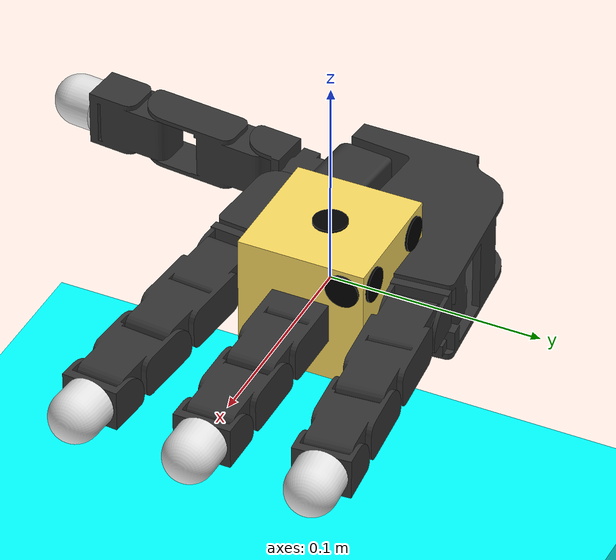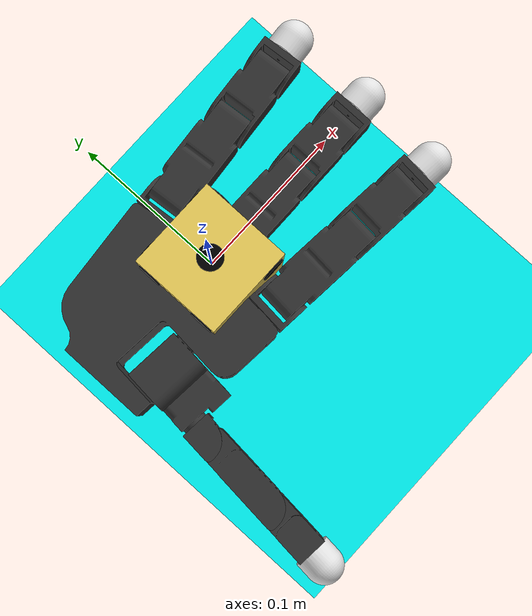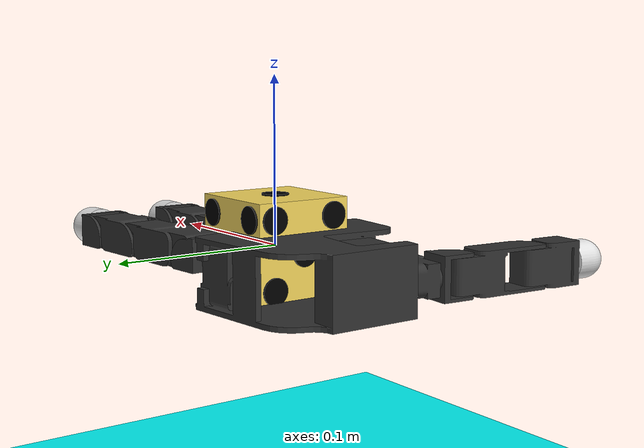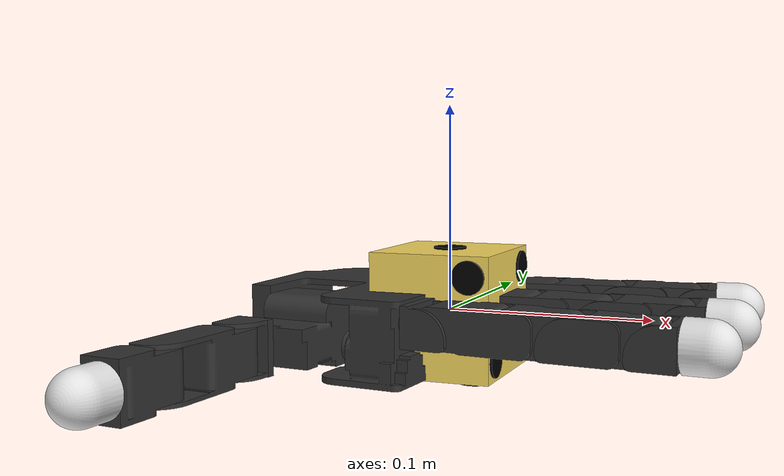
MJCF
<mujoco model="allegro_scene_drake">
<!-- Copyright (c) 2023 Robotics and AI Institute LLC dba RAI Institute. All rights reserved. -->

  <compiler angle="radian" meshdir="../meshes/allegro/visual"/>

  <default>
    <default class="allegro_right">
      <joint axis="0 1 0" damping=".1"/>

      <default class="visual">
        <geom type="mesh" material="black"/>
        <default class="palm_visual">
          <geom mesh="base_link"/>
        </default>
        <default class="base_visual">
          <geom mesh="link_0.0"/>
        </default>
        <default class="proximal_visual">
          <geom mesh="link_1.0"/>
        </default>
        <default class="medial_visual">
          <geom mesh="link_2.0"/>
        </default>
        <default class="distal_visual">
          <geom mesh="link_3.0"/>
        </default>
        <default class="fingertip_visual">
          <geom pos="0 0 0.0267" material="white" mesh="link_3.0_tip"/>
        </default>
        <default class="thumbtip_visual">
          <geom pos="0 0 0.0423" material="white" mesh="link_15.0_tip"/>
        </default>
      </default>

      <default class="collision">
        <geom type="box" material="transparent"/>
        <default class="palm_collision">
          <geom size="0.0204 0.0565 0.0475" pos="-0.0093 0 -0.0475"/>
        </default>
        <default class="base_collision">
          <geom size="0.0098 0.01375 0.0082" pos="0 0 0.0082"/>
          <default class="thumb_base_collision_0">
            <geom size="0.0179 0.017 0.011" pos="-0.0179 0.009 0.003"/>
          </default>
          <default class="thumb_base_collision_1">
            <geom size="0.0179 0.00980 0.012" pos="-0.0179 0.005 0.0255"/>
          </default>
          <!-- This geometry is commented out, while we wait for MJX to support cylinder collisions. -->
        </default>
        <default class="proximal_collision">
          <geom size="0.0098 0.01375 0.027" pos="0 0 0.027"/>
          <default class="thumb_proximal_collision">
            <geom size="0.0098 0.01375 0.00885" pos="0 0 0.00885"/>
          </default>
        </default>
        <default class="medial_collision">
          <geom size="0.0098 0.01375 0.0192" pos="0 0 0.0192"/>
          <default class="thumb_medial_collision">
            <geom size="0.0098 0.01375 0.0257" pos="0 0 0.0257"/>
          </default>
        </default>
        <default class="distal_collision">
          <geom size="0.0098 0.01375 0.008" pos="0 0 0.008"/>
          <default class="thumb_distal_collision">
            <geom size="0.0098 0.01375 0.0157" pos="0 0 0.0157"/>
          </default>
        </default>
        <default class="fingertip_collision">
          <geom type="capsule" size="0.012 0.008" pos="0 0 0.019"/>
          <default class="thumbtip_collision">
            <geom type="capsule" size="0.012 0.0075" pos="0 0 0.035"/>
          </default>
        </default>
      </default>

      <default class="palm">
        <joint damping="1.0" range="-0.3 0.3"/>
      </default>
      <default class="base">
        <joint axis="0 0 1" range="-0.47 0.47"/>
      </default>
      <default class="proximal">
        <joint range="-0.196 1.61"/>
      </default>
      <default class="medial">
        <joint range="-0.174 1.709"/>
      </default>
      <default class="distal">
        <joint range="-0.227 1.618"/>
      </default>
      <default class="thumb_base">
        <joint axis="-1 0 0" range="0.263 1.396"/>
      </default>
      <default class="thumb_proximal">
        <joint axis="0 0 1" range="-0.105 1.163"/>
      </default>
      <default class="thumb_medial">
        <joint range="-0.189 1.644"/>
      </default>
      <default class="thumb_distal">
        <joint range="-0.162 1.719"/>
      </default>
    </default>
  </default>

  <asset>
    <material name="black" rgba="0.2 0.2 0.2 1"/>
    <material name="white" rgba="0.9 0.9 0.9 1"/>
    <material name="transparent" rgba="0 0 0 0"/>

    <mesh file="base_link.obj"/>
    <mesh file="link_0.0.obj"/>
    <mesh file="link_1.0.obj"/>
    <mesh file="link_2.0.obj"/>
    <mesh file="link_3.0.obj"/>
    <mesh file="link_3.0_tip.obj"/>
    <mesh file="link_12.0_right.obj"/>
    <mesh file="link_13.0.obj"/>
    <mesh file="link_14.0.obj"/>
    <mesh file="link_15.0.obj"/>
    <mesh file="link_15.0_tip.obj"/>
  </asset>

  <worldbody>
    <body>
      <geom mass="0" name="floor" pos="0 0 -0.20" size="10.0 10.0 0.05" rgba="0 1 1 1" type="box"/>
    </body>

    <body name="object" pos="0 0 0">
      <freejoint/>
      <geom type="box" mass="0.15" pos="0 0 0" quat="1 0 0 0" size="0.030 0.030 0.030" rgba="0.97 0.85 0.37 1" class="collision"/>
      <geom type="cylinder" mass="0" pos="0 0 0.030" size="0.008 0.001" rgba="0 0 0 1" class="visual"/>

      <geom type="cylinder" mass="0" pos="0.02 -0.030 0.02" size="0.008 0.001" quat="1 1 0 0" rgba="0 0 0 1" class="visual"/>
      <geom type="cylinder" mass="0" pos="-0.02 -0.030 -0.02" size="0.008 0.001" quat="1 1 0 0" rgba="0 0 0 1" class="visual"/>

      <geom type="cylinder" mass="0" pos="0.030 0.02 0.02" size="0.008 0.001" quat="1 0 1 0" rgba="0 0 0 1" class="visual"/>
      <geom type="cylinder" mass="0" pos="0.030 0.0 0.0" size="0.008 0.001" quat="1 0 1 0" rgba="0 0 0 1" class="visual"/>
      <geom type="cylinder" mass="0" pos="0.030 -0.02 -0.02" size="0.008 0.001" quat="1 0 1 0" rgba="0 0 0 1" class="visual"/>

      <geom type="cylinder" mass="0" pos="0.02 0.030 0.02" size="0.008 0.001" quat="1 1 0 0" rgba="0 0 0 1" class="visual"/>
      <geom type="cylinder" mass="0" pos="0.02 0.030 -0.02" size="0.008 0.001" quat="1 1 0 0" rgba="0 0 0 1" class="visual"/>
      <geom type="cylinder" mass="0" pos="-0.02 0.030 0.02" size="0.008 0.001" quat="1 1 0 0" rgba="0 0 0 1" class="visual"/>
      <geom type="cylinder" mass="0" pos="-0.02 0.030 -0.02" size="0.008 0.001" quat="1 1 0 0" rgba="0 0 0 1" class="visual"/>

      <geom type="cylinder" mass="0" pos="-0.030 0.0 0.0" size="0.008 0.001" quat="1 0 1 0" rgba="0 0 0 1" class="visual"/>
      <geom type="cylinder" mass="0" pos="-0.030 0.02 0.02" size="0.008 0.001" quat="1 0 1 0" rgba="0 0 0 1" class="visual"/>
      <geom type="cylinder" mass="0" pos="-0.030 0.02 -0.02" size="0.008 0.001" quat="1 0 1 0" rgba="0 0 0 1" class="visual"/>
      <geom type="cylinder" mass="0" pos="-0.030 -0.02 0.02" size="0.008 0.001" quat="1 0 1 0" rgba="0 0 0 1" class="visual"/>
      <geom type="cylinder" mass="0" pos="-0.030 -0.02 -0.02" size="0.008 0.001" quat="1 0 1 0" rgba="0 0 0 1" class="visual"/>

      <geom type="cylinder" mass="0" pos="0.02 0.02 -0.030" size="0.008 0.001" rgba="0 0 0 1" class="visual"/>
      <geom type="cylinder" mass="0" pos="0.02 0 -0.030" size="0.008 0.001" rgba="0 0 0 1" class="visual"/>
      <geom type="cylinder" mass="0" pos="0.02 -0.02 -0.030" size="0.008 0.001" rgba="0 0 0 1" class="visual"/>
      <geom type="cylinder" mass="0" pos="-0.02 0.02 -0.030" size="0.008 0.001" rgba="0 0 0 1" class="visual"/>
      <geom type="cylinder" mass="0" pos="-0.02 0.0 -0.030" size="0.008 0.001" rgba="0 0 0 1" class="visual"/>
      <geom type="cylinder" mass="0" pos="-0.02 -0.02 -0.030" size="0.008 0.001" rgba="0 0 0 1" class="visual"/>
    </body>
  </worldbody>

  <worldbody>
    <body name="palm" quat="0 1 0 1" childclass="allegro_right">
      <inertial mass="0.4154" pos="0 0 0.0475" diaginertia="1e-4 1e-4 1e-4"/>
      <geom class="palm_visual" mesh="base_link"/>
      <geom class="palm_collision"/>
      <joint name="palm_x" axis="1 0 0" class="palm"/>
      <joint name="palm_y" axis="0 -1 0" class="palm"/>
      <!-- First finger -->
      <body name="ff_base" pos="0 0.0435 -0.001542" quat="0.999048 -0.0436194 0 0">
        <joint name="ffj0" class="base"/>
        <geom class="base_visual"/>
        <geom class="base_collision"/>
        <body name="ff_proximal" pos="0 0 0.0164">
          <joint name="ffj1" class="proximal"/>
          <geom class="proximal_visual"/>
          <geom class="proximal_collision"/>
          <body name="ff_medial" pos="0 0 0.054">
            <joint name="ffj2" class="medial"/>
            <geom class="medial_visual"/>
            <geom class="medial_collision"/>
            <body name="ff_distal" pos="0 0 0.0384">
              <joint name="ffj3" class="distal"/>
              <geom class="distal_visual"/>
              <geom class="distal_collision"/>
              <body name="ff_tip">
                <geom class="fingertip_visual"/>
                <geom class="fingertip_collision"/>
              </body>
            </body>
          </body>
        </body>
      </body>
      <!-- Middle finger -->
      <body name="mf_base" pos="0 0 0.0007">
        <joint name="mfj0" class="base"/>
        <geom class="base_visual"/>
        <geom class="base_collision"/>
        <body name="mf_proximal" pos="0 0 0.0164">
          <joint name="mfj1" class="proximal"/>
          <geom class="proximal_visual"/>
          <geom class="proximal_collision"/>
          <body name="mf_medial" pos="0 0 0.054">
            <joint name="mfj2" class="medial"/>
            <geom class="medial_visual"/>
            <geom class="medial_collision"/>
            <body name="mf_distal" pos="0 0 0.0384">
              <joint name="mfj3" class="distal"/>
              <geom class="distal_visual"/>
              <geom class="distal_collision"/>
              <body name="mf_tip">
                <geom class="fingertip_visual"/>
                <geom class="fingertip_collision"/>
              </body>
            </body>
          </body>
        </body>
      </body>
      <!-- Ring finger -->
      <body name="rf_base" pos="0 -0.0435 -0.001542" quat="0.999048 0.0436194 0 0">
        <joint name="rfj0" class="base"/>
        <geom class="base_visual"/>
        <geom class="base_collision"/>
        <body name="rf_proximal" pos="0 0 0.0164">
          <joint name="rfj1" class="proximal"/>
          <geom class="proximal_visual"/>
          <geom class="proximal_collision"/>
          <body name="rf_medial" pos="0 0 0.054">
            <joint name="rfj2" class="medial"/>
            <geom class="medial_visual"/>
            <geom class="medial_collision"/>
            <body name="rf_distal" pos="0 0 0.0384">
              <joint name="rfj3" class="distal"/>
              <geom class="distal_visual"/>
              <geom class="distal_collision"/>
              <body name="rf_tip">
                <geom class="fingertip_visual"/>
                <geom class="fingertip_collision"/>
              </body>
            </body>
          </body>
        </body>
      </body>
      <!-- Thumb -->
      <body name="th_base" pos="-0.0182 0.019333 -0.045987" quat="0.477714 -0.521334 -0.521334 -0.477714">
        <joint name="thj0" class="thumb_base"/>
        <geom class="visual" mesh="link_12.0_right"/>
        <geom class="thumb_base_collision_0"/>
        <geom class="thumb_base_collision_1"/>
        <!-- This geometry is commented out, while we wait for MJX to support cylinder collisions. -->
        <body name="th_proximal" pos="-0.027 0.005 0.0399">
          <joint name="thj1" class="thumb_proximal"/>
          <geom class="visual" mesh="link_13.0"/>
          <geom class="thumb_proximal_collision"/>
          <body name="th_medial" pos="0 0 0.0177">
            <joint name="thj2" class="thumb_medial"/>
            <geom class="visual" mesh="link_14.0"/>
            <geom class="thumb_medial_collision"/>
            <body name="th_distal" pos="0 0 0.0514">
              <joint name="thj3" class="thumb_distal"/>
              <geom class="visual" mesh="link_15.0"/>
              <geom class="thumb_distal_collision"/>
              <body name="th_tip">
                <geom class="thumbtip_visual"/>
                <geom class="thumbtip_collision"/>
              </body>
            </body>
          </body>
        </body>
      </body>
    </body>
  </worldbody>

</mujoco>
